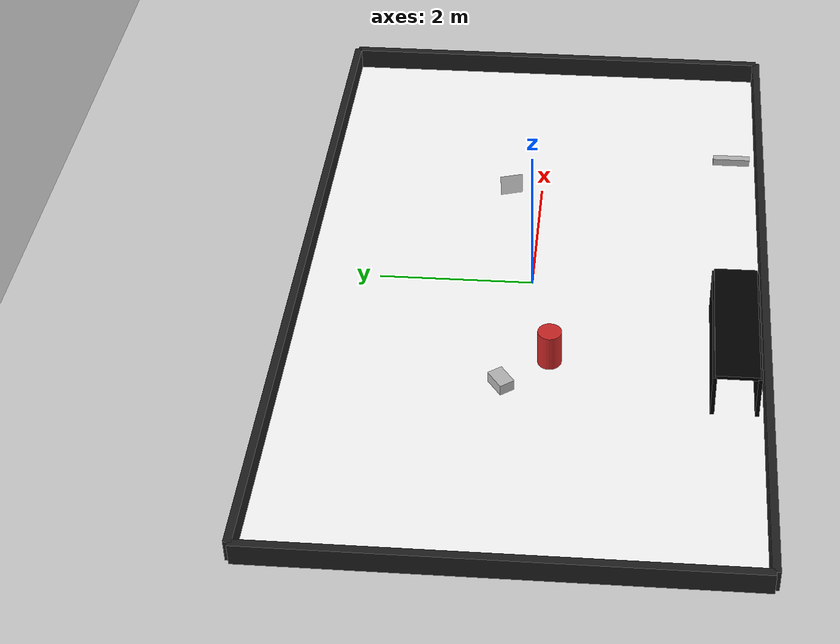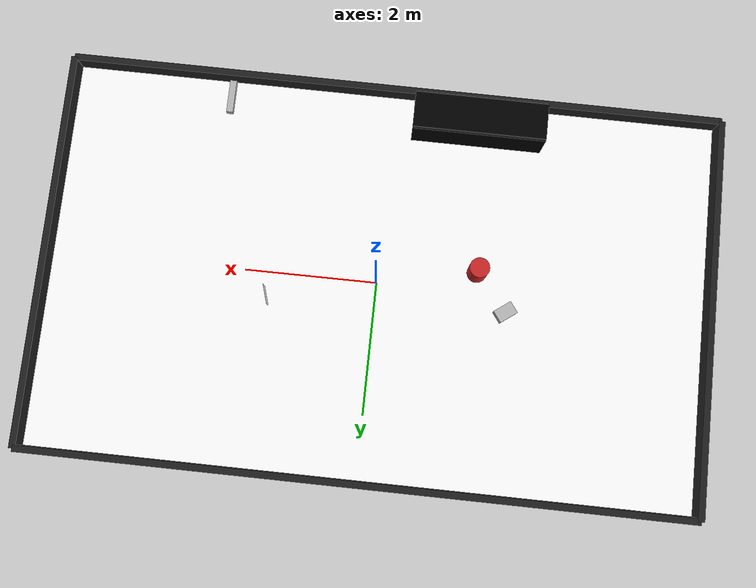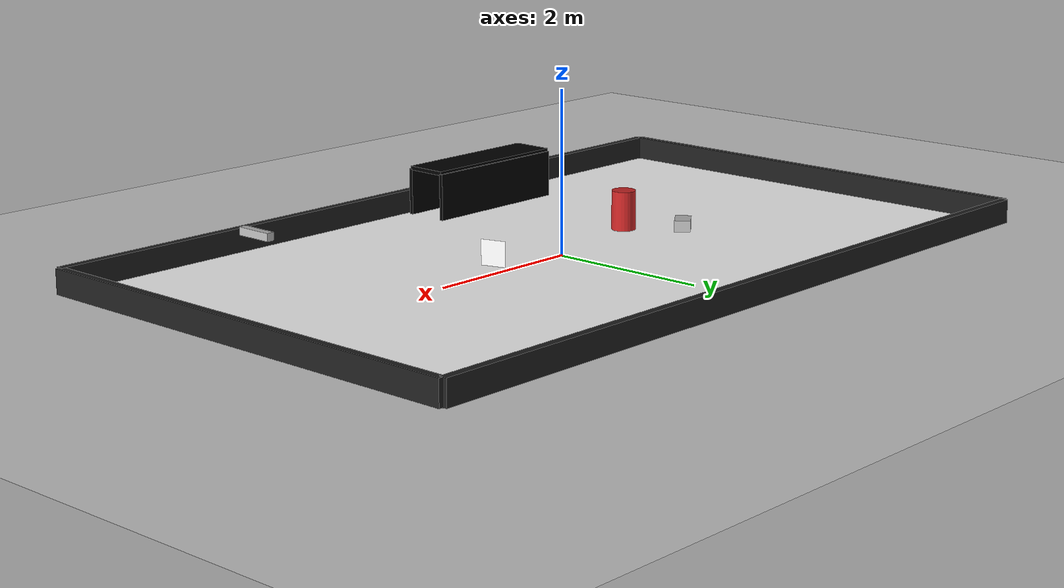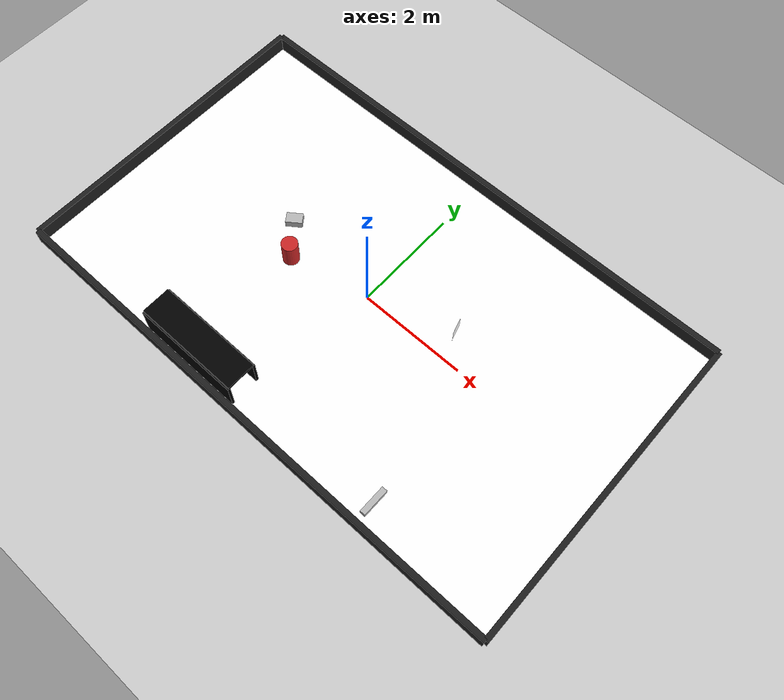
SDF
<sdf version="1.7">
 <world name="2024autorace_basic">
  <light name="sun" type="directional">
   <pose>0 0 10 0 0 0</pose>
   <diffuse>0.8 0.8 0.8 1</diffuse>
   <specular>0.2 0.2 0.2 1</specular>
   <attenuation>
    <range>1000</range>
    <constant>0.9</constant>
    <linear>0.01</linear>
    <quadratic>0.001</quadratic>
   </attenuation>
   <direction>-0.5 0.1 -0.9</direction>
  </light>
  <model name="ground_plane">
   <static>1</static>
   <link name="link">
    <collision name="collision">
     <geometry><plane><normal>0 0 1</normal><size>100 100</size></plane></geometry>
     <surface><friction><ode><mu>100</mu><mu2>50</mu2></ode></friction></surface>
    </collision>
    <visual name="visual">
     <cast_shadows>0</cast_shadows>
     <geometry><plane><normal>0 0 1</normal><size>100 100</size></plane></geometry>
     <material>
      <script><uri>file://media/materials/scripts/gazebo.material</uri><name>Gazebo/Grey</name></script>
     </material>
    </visual>
   </link>
  </model>
  <gravity>0 0 -9.8</gravity>
  <physics type="ode">
   <max_step_size>0.001</max_step_size>
   <real_time_factor>1</real_time_factor>
   <real_time_update_rate>1000</real_time_update_rate>
  </physics>
  <scene><ambient>0.4 0.4 0.4 1</ambient><background>0.7 0.7 0.7 1</background><shadows>1</shadows></scene>
  <model name="moving_box_0">
   <pose>-1.9708008938042767 0.24679712305567214 0.0 0 0 3.7707963267948967</pose>
   <inertial>
    <mass>2.0</mass>
    <inertia><ixx>0.1</ixx><iyy>0.1</iyy><izz>0.1</izz><ixy>0</ixy><ixz>0</ixz><iyz>0</iyz></inertia>
   </inertial>
   <link name="link">
    <collision name="collision"><geometry><box><size>0.3 0.2 0.3</size></box></geometry></collision>
    <visual name="visual"><geometry><box><size>0.3 0.2 0.3</size></box></geometry></visual>
   </link>
   <plugin name="planar_move_0" filename="libgazebo_ros_planar_move.so">
    <ros>
     <namespace>demo</namespace>
     <remapping>cmd_vel:=box0_cmd_demo</remapping>
     <remapping>odom:=box0_odom_demo</remapping>
    </ros>
   </plugin>
  </model>
  <model name="crossing_box">
   <pose>2.5 -2.6 0.3 0 0 1.5707</pose>
   <static>false</static>
   <link name="link">
    <gravity>false</gravity>
    <inertial>
     <mass>1.5</mass>
     <inertia><ixx>0.1</ixx><iyy>0.1</iyy><izz>0.1</izz><ixy>0</ixy><ixz>0</ixz><iyz>0</iyz></inertia>
    </inertial>
    <collision name="collision"><geometry><box><size>0.5 0.1 0.1</size></box></geometry></collision>
    <visual name="visual"><geometry><box><size>0.5 0.1 0.1</size></box></geometry></visual>
   </link>
   <plugin name="cross_planar_move" filename="libgazebo_ros_planar_move.so">
    <ros>
     <namespace>demo</namespace>
     <remapping>cmd_vel:=cross_cmd_demo</remapping>
     <remapping>odom:=cross_odom_demo</remapping>
    </ros>
   </plugin>
  </model>
  <model name="cylinder_0">
   <pose>-1.5 -0.32 0.25 0 0 0</pose>
   <static>1</static>
   <link name="link">
    <inertial>
     <mass>5.0</mass>
     <inertia><ixx>0.3</ixx><iyy>0.3</iyy><izz>0.06</izz><ixy>0</ixy><ixz>0</ixz><iyz>0</iyz></inertia>
    </inertial>
    <collision name="collision">
     <geometry><cylinder><radius>0.15</radius><length>0.5</length></cylinder></geometry>
     <surface><friction><ode><mu>1.0</mu><mu2>1.0</mu2></ode></friction></surface>
    </collision>
    <visual name="visual">
     <geometry><cylinder><radius>0.15</radius><length>0.5</length></cylinder></geometry>
     <material>
      <script><uri>file://media/materials/scripts/gazebo.material</uri><name>Gazebo/Red</name></script>
     </material>
    </visual>
   </link>
  </model>
  <include><uri>model://2025autorace</uri></include>
  <include><uri>model://wall_10m</uri><name>wall_10m_left</name><pose>0 3 0.15 0 0 0</pose></include>
  <include><uri>model://wall_10m</uri><name>wall_10m_right</name><pose>0 -3 0.15 0 0 0</pose></include>
  <include><uri>model://wall_6m</uri><name>wall_6m_right</name><pose>5 0 0.15 0 0 1.5707</pose></include>
  <include><uri>model://wall_6m</uri><name>wall_6m_left</name><pose>-5 0 0.15 0 0 1.5707</pose></include>
  <include><uri>model://tunnel</uri><name>tunnel</name><pose>-1.3 -2.6 0 0 0 1.5707</pose></include>
  <include>
   <uri>model://left_marker</uri>
   <name>left_marker</name>
   <pose>1.6 0.4 0.4 1.5707 0 0.2935</pose>
  </include>
 </world>
</sdf>

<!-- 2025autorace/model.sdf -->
<sdf version="1.7">
  <model name="2025autorace">
    <static>true</static>
    <pose>0 0 0 0 0 0</pose>

    <link name="base">

      <!-- 텍스처가 입혀진 10m x 6m 평면 (z=0.001로 z-fighting 방지) -->
      <visual name="base_visual_plane">
        <pose>0 0 0.001 0 0 0</pose>
        <geometry>
          <plane>
            <normal>0 0 1</normal>
            <size>10 6</size>
          </plane>
        </geometry>
        <material>
          <script>
            <!-- 스크립트/텍스처 경로 등록 -->
            <uri>model://2025autorace/materials/scripts</uri>
            <uri>model://2025autorace/materials/textures</uri>
            <!-- ★ 스크립트에 정의한 이름과 동일해야 함 -->
            <name>2025Autorace/Albedo</name>
          </script>
          <!-- 아래 색상들은 스크립트가 대체하므로 굳이 필요 없음 (남겨도 무방) -->
          <ambient>1 1 1 1</ambient>
          <diffuse>1 1 1 1</diffuse>
          <specular>0 0 0 1</specular>
        </material>
      </visual>
    </link>
  </model>
</sdf>

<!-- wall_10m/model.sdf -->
<sdf version="1.7">
  <model name="wall_10m">
    <static>true</static>
    <!-- 바닥 위에 놓이도록 링크의 중심을 z = 0.15(= 0.3/2) -->
    <pose>0 0 0.15 0 0 0</pose>

    <link name="link">
      <inertial>
        <mass>1.0</mass>
        <inertia>
          <ixx>1.0</ixx><iyy>1.0</iyy><izz>1.0</izz>
          <ixy>0</ixy><ixz>0</ixz><iyz>0</iyz>
        </inertia>
      </inertial>

      <collision name="collision">
        <geometry>
          <box>
            <size>10.0 0.1 0.3</size>
          </box>
        </geometry>
        <surface>
          <contact/>
          <friction>
            <ode/>
          </friction>
        </surface>
      </collision>

      <visual name="visual">
        <geometry>
          <box>
            <size>10.0 0.1 0.3</size>
          </box>
        </geometry>
        <material>
          <script>
            <uri>file://media/materials/scripts/gazebo.material</uri>
            <name>Gazebo/Black</name>
          </script>
        </material>
      </visual>
    </link>
  </model>
</sdf>

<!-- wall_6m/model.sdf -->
<sdf version="1.7">
  <model name="wall_6m">
    <static>true</static>
    <!-- 바닥 위에 놓이도록 링크의 중심을 z = 0.15(= 0.3/2) -->
    <pose>0 0 0.15 0 0 0</pose>

    <link name="link">
      <inertial>
        <mass>1.0</mass>
        <inertia>
          <ixx>1.0</ixx><iyy>1.0</iyy><izz>1.0</izz>
          <ixy>0</ixy><ixz>0</ixz><iyz>0</iyz>
        </inertia>
      </inertial>

      <collision name="collision">
        <geometry>
          <box>
            <size>6.0 0.1 0.3</size>
          </box>
        </geometry>
        <surface>
          <contact/>
          <friction>
            <ode/>
          </friction>
        </surface>
      </collision>

      <visual name="visual">
        <geometry>
          <box>
            <size>6.0 0.1 0.3</size>
          </box>
        </geometry>
        <material>
          <script>
            <uri>file://media/materials/scripts/gazebo.material</uri>
            <name>Gazebo/Black</name>
          </script>
        </material>
      </visual>
    </link>
  </model>
</sdf>

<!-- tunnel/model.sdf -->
<sdf version="1.7">
  <model name="tunnel">
    <static>true</static>

    <!-- 왼쪽 기둥 -->
    <link name="pillar_left">
      <pose>-0.27 0 0.3 0 0 0</pose>
      <collision name="col">
        <geometry><box><size>0.05 2.0 0.6</size></box></geometry>
      </collision>
      <visual name="vis">
        <geometry><box><size>0.05 2.0 0.6</size></box></geometry>
        <material><ambient>0 0 0 1</ambient><diffuse>0 0 0 1</diffuse></material>
      </visual>
    </link>

    <!-- 오른쪽 기둥 -->
    <link name="pillar_right">
      <pose>0.27 0 0.3 0 0 0</pose>
      <collision name="col">
        <geometry><box><size>0.05 2.0 0.6</size></box></geometry>
      </collision>
      <visual name="vis">
        <geometry><box><size>0.05 2.0 0.6</size></box></geometry>
        <material><ambient>0 0 0 1</ambient><diffuse>0 0 0 1</diffuse></material>
      </visual>
    </link>

    <!-- 상부 보 -->
    <link name="beam_top">
      <pose>0 0 0.61 0 0 0</pose>
      <collision name="col">
        <geometry><box><size>0.54 2.0 0.05</size></box></geometry>
      </collision>
      <visual name="vis">
        <geometry><box><size>0.54 2.0 0.05</size></box></geometry>
        <material><ambient>0 0 0 1</ambient><diffuse>0 0 0 1</diffuse></material>
      </visual>
    </link>
  </model>
</sdf>

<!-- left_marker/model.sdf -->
<sdf version="1.7">
  <model name="left marker">
    <static>true</static>
    <pose>0 0 0 0 0 0</pose>

    <link name="base">

      <!-- 텍스처가 입혀진 10m x 6m 평면 (z=0.001로 z-fighting 방지) -->
      <visual name="base_visual_plane">
        <pose>0 0 0.001 0 1.5707 0</pose>
        <geometry>
          <plane>
            <normal>0 0 1</normal>
            <size>.3 .3</size>
          </plane>
        </geometry>
        <material>
          <script>
            <!-- 스크립트/텍스처 경로 등록 -->
            <uri>model://left_marker/materials/scripts</uri>
            <uri>model://left_marker/materials/textures</uri>
            <!-- ★ 스크립트에 정의한 이름과 동일해야 함 -->
            <name>Leftmarker/Albedo</name>
          </script>
          <!-- 아래 색상들은 스크립트가 대체하므로 굳이 필요 없음 (남겨도 무방) -->
          <ambient>1 1 1 1</ambient>
          <diffuse>1 1 1 1</diffuse>
          <specular>0 0 0 1</specular>
        </material>
      </visual>
    </link>
  </model>
</sdf>
